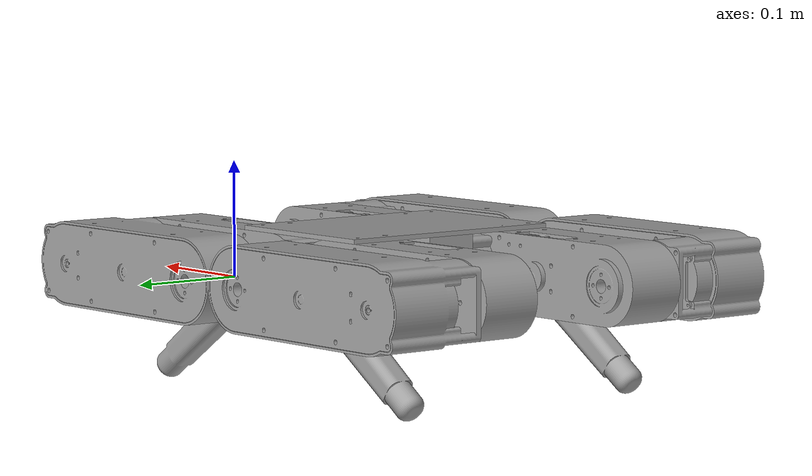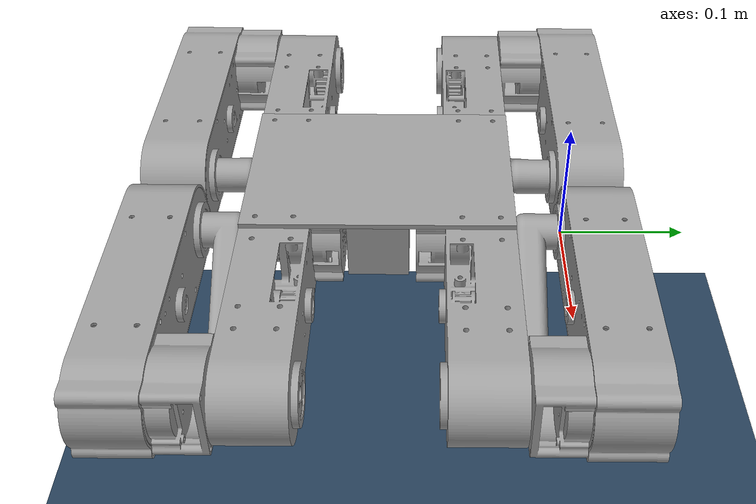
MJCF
<mujoco model="quadurdf">
  <compiler angle="radian"/>
  <asset>
    <mesh name="base_link" file="base_link.stl" scale="0.001 0.001 0.001"/>
    <mesh name="ACTUATOR_V2__HIP__v3_3" file="ACTUATOR_V2__HIP__v3_3.stl" scale="0.001 0.001 0.001"/>
    <mesh name="ACTUATOR_V2__HIP__v3_1" file="ACTUATOR_V2__HIP__v3_1.stl" scale="0.001 0.001 0.001"/>
    <mesh name="ACTUATOR_V2__HIP__v3_4" file="ACTUATOR_V2__HIP__v3_4.stl" scale="0.001 0.001 0.001"/>
    <mesh name="ACTUATOR_V2__HIP__v3_2" file="ACTUATOR_V2__HIP__v3_2.stl" scale="0.001 0.001 0.001"/>
    <mesh name="ACTUATOR_V2__KNEE__v6_1" file="ACTUATOR_V2__KNEE__v6_1.stl" scale="0.001 0.001 0.001"/>
    <mesh name="ACTUATOR_V2__KNEE__v6_2" file="ACTUATOR_V2__KNEE__v6_2.stl" scale="0.001 0.001 0.001"/>
    <mesh name="ACTUATOR_V2__KNEE__v6_3" file="ACTUATOR_V2__KNEE__v6_3.stl" scale="0.001 0.001 0.001"/>
    <mesh name="ACTUATOR_V2__KNEE__v6_4" file="ACTUATOR_V2__KNEE__v6_4.stl" scale="0.001 0.001 0.001"/>
    <mesh name="ANKLE_v3_1" file="ANKLE_v3_1.stl" scale="0.001 0.001 0.001"/>
    <mesh name="ANKLE_v3_2" file="ANKLE_v3_2.stl" scale="0.001 0.001 0.001"/>
    <mesh name="ANKLE_v3_3" file="ANKLE_v3_3.stl" scale="0.001 0.001 0.001"/>
    <mesh name="ANKLE_v3_4" file="ANKLE_v3_4.stl" scale="0.001 0.001 0.001"/>
    <mesh name="6200_MAH_BATTERY_v1_1" file="6200_MAH_BATTERY_v1_1.stl" scale="0.001 0.001 0.001"/>
    <texture name="grid" type="2d" builtin="checker" rgb1=".1 .2 .3"
    rgb2=".2 .3 .4" width="300" height="300" mark="edge" markrgb=".2 .3 .4"/>
    <material name="grid" texture="grid" texrepeat="2 2" texuniform="true"
    reflectance=".2"/>
  </asset>
  <worldbody>
    <geom name="ground" type="plane" pos="0 0 -.5" size="2 2 .1" material="grid" solimp=".99 .99 .01" solref=".001 1"/>

    <body name='robot'>
    <freejoint/>
      <geom type="mesh" rgba="0.627451 0.627451 0.627451 1" mesh="base_link"/>
      <geom type="mesh" rgba="0.627451 0.627451 0.627451 1" mesh="ACTUATOR_V2__HIP__v3_3"/>
      <geom type="mesh" rgba="0.627451 0.627451 0.627451 1" mesh="ACTUATOR_V2__HIP__v3_1"/>
      <geom type="mesh" rgba="0.627451 0.627451 0.627451 1" mesh="ACTUATOR_V2__HIP__v3_4"/>
      <geom type="mesh" rgba="0.627451 0.627451 0.627451 1" mesh="ACTUATOR_V2__HIP__v3_2"/>
      <geom type="mesh" rgba="0.627451 0.627451 0.627451 1" mesh="6200_MAH_BATTERY_v1_1"/>
      <body name="ACTUATOR_V2__KNEE__v6_4" pos="-0.25087 -0.0432 0">
        <inertial pos="0.068909 0.0609505 3.65818e-06" quat="0.469232 0.460942 0.536234 0.528968" mass="5.55861" diaginertia="0.0346722 0.0346 0.00491082"/>
        <joint name="Revolute 8" pos="0 0 0" axis="0 -1 0"/>
        <geom pos="0.25087 0.0432 0" type="mesh" rgba="0.627451 0.627451 0.627451 1" mesh="ACTUATOR_V2__KNEE__v6_4"/>
        <body name="ANKLE_v3_3" pos="0.17587 0.0405 0">
          <inertial pos="-0.0564645 -0.0216477 -0.0395369" quat="-0.0534461 0.461697 -0.0121465 0.885343" mass="0.925771" diaginertia="0.00253162 0.00252784 0.000105545"/>
          <joint name="Revolute 11" pos="0 0 0" axis="0 1 0"/>
          <geom pos="0.075 0.0027 0" type="mesh" rgba="0.627451 0.627451 0.627451 1" mesh="ANKLE_v3_3"/>
        </body>
      </body>
      <body name="ACTUATOR_V2__KNEE__v6_1" pos="0.17587 -0.0432 0">
        <inertial pos="-0.068909 0.0609505 -3.65818e-06" quat="0.528968 0.536234 0.460942 0.469232" mass="5.55861" diaginertia="0.0346722 0.0346 0.00491082"/>
        <joint name="Revolute 5" pos="0 0 0" axis="0 -1 0"/>
        <geom pos="-0.17587 0.0432 0" type="mesh" rgba="0.627451 0.627451 0.627451 1" mesh="ACTUATOR_V2__KNEE__v6_1"/>
        <body name="ANKLE_v3_1" pos="-0.17587 0.0405 0">
          <inertial pos="0.0564645 -0.0216477 -0.0395369" quat="-0.0121465 0.885343 -0.0534461 0.461697" mass="0.925771" diaginertia="0.00253162 0.00252784 0.000105545"/>
          <joint name="Revolute 9" pos="0 0 0" axis="0 -1 0"/>
          <geom pos="0 0.0027 0" type="mesh" rgba="0.627451 0.627451 0.627451 1" mesh="ANKLE_v3_1"/>
        </body>
      </body>
      <body name="ACTUATOR_V2__KNEE__v6_3" pos="-0.25087 -0.253 0">
        <inertial pos="0.068909 -0.0609505 -3.65818e-06" quat="0.536234 0.528968 0.469232 0.460942" mass="5.55861" diaginertia="0.0346722 0.0346 0.00491082"/>
        <joint name="Revolute 7" pos="0 0 0" axis="0 1 0"/>
        <geom pos="0.25087 0.253 0" type="mesh" rgba="0.627451 0.627451 0.627451 1" mesh="ACTUATOR_V2__KNEE__v6_3"/>
        <body name="ANKLE_v3_4" pos="0.17587 -0.0405 0">
          <inertial pos="-0.0564645 0.0216477 -0.0395369" quat="0.0534461 0.461697 0.0121465 0.885343" mass="0.925771" diaginertia="0.00253162 0.00252784 0.000105545"/>
          <joint name="Revolute 12" pos="0 0 0" axis="0 -1 0"/>
          <geom pos="0.075 0.2935 0" type="mesh" rgba="0.627451 0.627451 0.627451 1" mesh="ANKLE_v3_4"/>
        </body>
      </body>
      <body name="ACTUATOR_V2__KNEE__v6_2" pos="0.17587 -0.253 0">
        <inertial pos="-0.068909 -0.0609505 3.65818e-06" quat="0.460942 0.469232 0.528968 0.536234" mass="5.55861" diaginertia="0.0346722 0.0346 0.00491082"/>
        <joint name="Revolute 6" pos="0 0 0" axis="0 1 0"/>
        <geom pos="-0.17587 0.253 0" type="mesh" rgba="0.627451 0.627451 0.627451 1" mesh="ACTUATOR_V2__KNEE__v6_2"/>
        <body name="ANKLE_v3_2" pos="-0.17587 -0.0405 0">
          <inertial pos="0.0564645 0.0216477 -0.0395369" quat="0.0121465 0.885343 0.0534461 0.461697" mass="0.925771" diaginertia="0.00253162 0.00252784 0.000105545"/>
          <joint name="Revolute 10" pos="0 0 0" axis="0 -1 0"/>
          <geom pos="0 0.2935 0" type="mesh" rgba="0.627451 0.627451 0.627451 1" mesh="ANKLE_v3_2"/>
        </body>
      </body>
    </body>
  </worldbody>
  <actuator>
    <position gear='10' joint='Revolute 8' name='motor 11' kp='10' kv='0.1' ctrlrange='-31.5 0'/>
    <position gear='10' joint='Revolute 11' name='motor 12' kp='10' kv='0.1' ctrlrange='-53.5 2.5'/>
    <position gear='10' joint='Revolute 5' name='motor 31' kp='10' kv='0.1' ctrlrange='0 31.5'/>
    <position gear='10' joint='Revolute 9' name='motor 32' kp='10' kv='0.1' ctrlrange='-53.5 2.5'/>
    <position gear='10' joint='Revolute 7' name='motor 21' kp='10' kv='0.1' ctrlrange='0 31.5'/>
    <position gear='10' joint='Revolute 12' name='motor 22' kp='10' kv='0.1' ctrlrange='-2.5 53.5'/>
    <position gear='10' joint='Revolute 6' name='motor 41' kp='10' kv='0.1' ctrlrange='-31.5 0'/>
    <position gear='10' joint='Revolute 10' name='motor 42' kp='10' kv='0.1' ctrlrange='-53.5 2.5'/>
  </actuator>
  <option integrator='implicitfast'/>
</mujoco>
